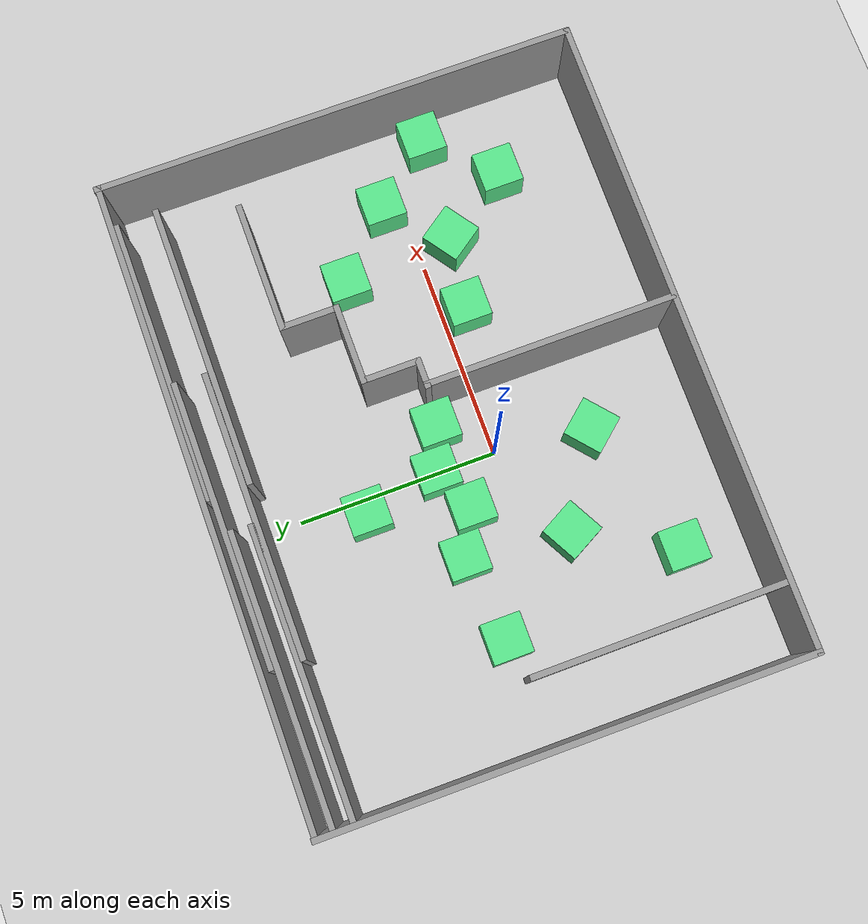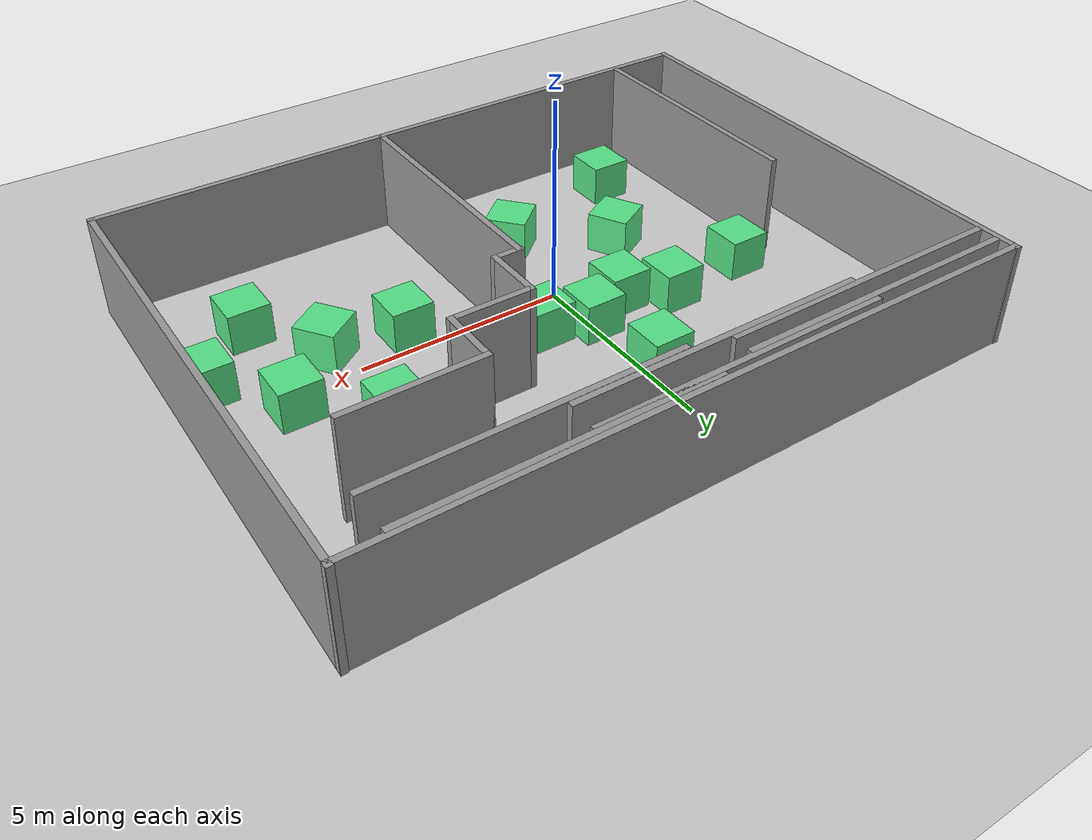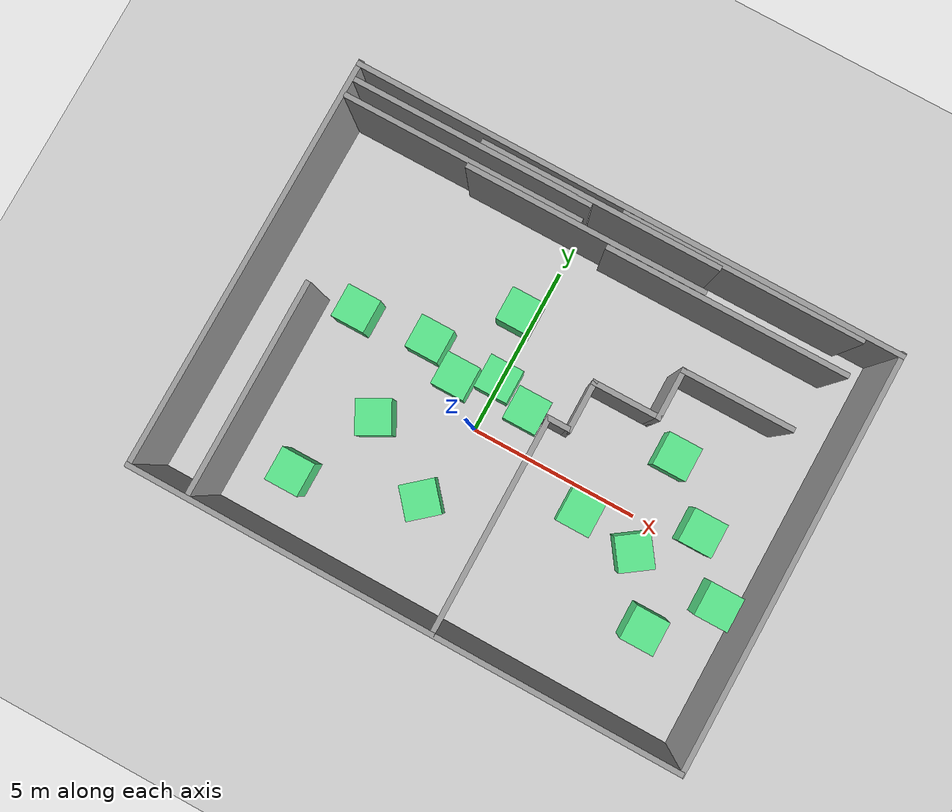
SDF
<sdf version="1.7">
 <world name="default">
  <plugin name="gazebo_ros_state" filename="libgazebo_ros_state.so"><update_rate>0.004</update_rate></plugin>
  <light name="sun" type="directional">
   <pose>0 0 10 0 -0 0</pose>
   <diffuse>0.8 0.8 0.8 1</diffuse>
   <specular>0.2 0.2 0.2 1</specular>
   <attenuation>
    <range>1000</range>
    <constant>0.9</constant>
    <linear>0.01</linear>
    <quadratic>0.001</quadratic>
   </attenuation>
   <direction>-0.5 0.1 -0.9</direction>
   <spot><inner_angle>0</inner_angle><outer_angle>0</outer_angle><falloff>0</falloff></spot>
  </light>
  <model name="ground_plane">
   <static>1</static>
   <link name="link">
    <collision name="collision">
     <geometry><plane><normal>0 0 1</normal><size>100 100</size></plane></geometry>
     <surface><friction><ode><mu>100</mu><mu2>50</mu2></ode></friction></surface>
    </collision>
    <visual name="visual">
     <cast_shadows>0</cast_shadows>
     <geometry><plane><normal>0 0 1</normal><size>100 100</size></plane></geometry>
     <material>
      <script><uri>file://media/materials/scripts/gazebo.material</uri><name>Gazebo/Grey</name></script>
     </material>
    </visual>
   </link>
  </model>
  <gravity>0 0 -9.8</gravity>
  <magnetic_field>6e-06 2.3e-05 -4.2e-05</magnetic_field>
  <atmosphere type="adiabatic"/>
  <physics type="ode">
   <real_time_update_rate>1000.0</real_time_update_rate>
   <max_step_size>0.001</max_step_size>
   <real_time_factor>1</real_time_factor>
   <ode>
    <solver>
     <type>quick</type>
     <iters>150</iters>
     <precon_iters>0</precon_iters>
     <sor>1.400000</sor>
     <use_dynamic_moi_rescaling>1</use_dynamic_moi_rescaling>
    </solver>
    <constraints>
     <cfm>0.00001</cfm>
     <erp>0.2</erp>
     <contact_max_correcting_vel>2000.000000</contact_max_correcting_vel>
     <contact_surface_layer>0.01000</contact_surface_layer>
    </constraints>
   </ode>
  </physics>
  <scene><ambient>0.4 0.4 0.4 1</ambient><background>0.7 0.7 0.7 1</background><shadows>1</shadows></scene>
  <audio><device>default</device></audio>
  <spherical_coordinates>
   <surface_model>EARTH_WGS84</surface_model>
   <latitude_deg>0</latitude_deg>
   <longitude_deg>0</longitude_deg>
   <elevation>0</elevation>
   <heading_deg>0</heading_deg>
  </spherical_coordinates>
  <model name="compact_scenario">
   <pose>0.8495 0.906405 0 0 -0 0</pose>
   <link name="Wall_0">
    <collision name="Wall_0_Collision">
     <geometry><box><size>12.0524 0.15 2.5</size></box></geometry>
     <pose>0 0 1.25 0 -0 0</pose>
    </collision>
    <visual name="Wall_0_Visual">
     <pose>0 0 1.25 0 -0 0</pose>
     <geometry><box><size>12.0524 0.15 2.5</size></box></geometry>
     <material>
      <script><uri>file://media/materials/scripts/gazebo.material</uri><name>Gazebo/Grey</name></script>
      <ambient>1 1 1 1</ambient>
     </material>
     <meta><layer>0</layer></meta>
    </visual>
    <pose>-7.925 0.034695 0 0 -0 1.5655</pose>
   </link>
   <link name="Wall_10">
    <collision name="Wall_10_Collision">
     <geometry><box><size>2 0.15 2.5</size></box></geometry>
     <pose>0 0 1.25 0 -0 0</pose>
    </collision>
    <visual name="Wall_10_Visual">
     <pose>0 0 1.25 0 -0 0</pose>
     <geometry><box><size>2 0.15 2.5</size></box></geometry>
     <material>
      <script><uri>file://media/materials/scripts/gazebo.material</uri><name>Gazebo/Grey</name></script>
      <ambient>1 1 1 1</ambient>
     </material>
     <meta><layer>0</layer></meta>
    </visual>
    <pose>2.32707 1.54953 0 0 -0 0</pose>
   </link>
   <link name="Wall_11">
    <collision name="Wall_11_Collision">
     <geometry><box><size>1.5 0.15 2.5</size></box></geometry>
     <pose>0 0 1.25 0 -0 0</pose>
    </collision>
    <visual name="Wall_11_Visual">
     <pose>0 0 1.25 0 -0 0</pose>
     <geometry><box><size>1.5 0.15 2.5</size></box></geometry>
     <material>
      <script><uri>file://media/materials/scripts/gazebo.material</uri><name>Gazebo/Grey</name></script>
      <ambient>1 1 1 1</ambient>
     </material>
     <meta><layer>0</layer></meta>
    </visual>
    <pose>3.25206 2.22453 0 0 -0 1.5708</pose>
   </link>
   <link name="Wall_12">
    <collision name="Wall_12_Collision">
     <geometry><box><size>3.25 0.15 2.5</size></box></geometry>
     <pose>0 0 1.25 0 -0 0</pose>
    </collision>
    <visual name="Wall_12_Visual">
     <pose>0 0 1.25 0 -0 0</pose>
     <geometry><box><size>3.25 0.15 2.5</size></box></geometry>
     <material>
      <script><uri>file://media/materials/scripts/gazebo.material</uri><name>Gazebo/Grey</name></script>
      <ambient>1 1 1 1</ambient>
     </material>
     <meta><layer>0</layer></meta>
    </visual>
    <pose>4.80206 2.89953 0 0 -0 0</pose>
   </link>
   <link name="Wall_16">
    <collision name="Wall_16_Collision">
     <geometry><box><size>6.25 0.15 2.5</size></box></geometry>
     <pose>0 0 1.25 0 -0 0</pose>
    </collision>
    <visual name="Wall_16_Visual">
     <pose>0 0 1.25 0 -0 0</pose>
     <geometry><box><size>6.25 0.15 2.5</size></box></geometry>
     <material>
      <script><uri>file://media/materials/scripts/gazebo.material</uri><name>Gazebo/Grey</name></script>
      <ambient>1 1 1 1</ambient>
     </material>
     <meta><layer>0</layer></meta>
    </visual>
    <pose>-6.26278 -2.77067 0 0 -0 1.5708</pose>
   </link>
   <link name="Wall_2">
    <collision name="Wall_2_Collision">
     <geometry><box><size>15.9738 0.15 2.5</size></box></geometry>
     <pose>0 0 1.25 0 -0 0</pose>
    </collision>
    <visual name="Wall_2_Visual">
     <pose>0 0 1.25 0 -0 0</pose>
     <geometry><box><size>15.9738 0.15 2.5</size></box></geometry>
     <material>
      <script><uri>file://media/materials/scripts/gazebo.material</uri><name>Gazebo/Grey</name></script>
      <ambient>1 1 1 1</ambient>
     </material>
     <meta><layer>0</layer></meta>
    </visual>
    <pose>-0.044699 -5.9511 0 0 -0 -0.004385</pose>
   </link>
   <link name="Wall_4">
    <collision name="Wall_4_Collision">
     <geometry><box><size>12.0528 0.15 2.5</size></box></geometry>
     <pose>0 0 1.25 0 -0 0</pose>
    </collision>
    <visual name="Wall_4_Visual">
     <pose>0 0 1.25 0 -0 0</pose>
     <geometry><box><size>12.0528 0.15 2.5</size></box></geometry>
     <material>
      <script><uri>file://media/materials/scripts/gazebo.material</uri><name>Gazebo/Grey</name></script>
      <ambient>1 1 1 1</ambient>
     </material>
     <meta><layer>0</layer></meta>
    </visual>
    <pose>7.9251 -0.034501 0 0 -0 1.56552</pose>
   </link>
   <link name="Wall_5">
    <collision name="Wall_5_Collision">
     <geometry><box><size>16 0.15 2.5</size></box></geometry>
     <pose>0 0 1.25 0 -0 0</pose>
    </collision>
    <visual name="Wall_5_Visual">
     <pose>0 0 1.25 0 -0 0</pose>
     <geometry><box><size>16 0.15 2.5</size></box></geometry>
     <material>
      <script><uri>file://media/materials/scripts/gazebo.material</uri><name>Gazebo/Grey</name></script>
      <ambient>1 1 1 1</ambient>
     </material>
     <meta><layer>0</layer></meta>
    </visual>
    <pose>0.031501 5.92469 0 0 -0 3.13724</pose>
   </link>
   <link name="Wall_7">
    <collision name="Wall_7_Collision">
     <geometry><box><size>6.25 0.15 2.5</size></box></geometry>
     <pose>0 0 1.25 0 -0 0</pose>
    </collision>
    <visual name="Wall_7_Visual">
     <pose>0 0 1.25 0 -0 0</pose>
     <geometry><box><size>6.25 0.15 2.5</size></box></geometry>
     <material>
      <script><uri>file://media/materials/scripts/gazebo.material</uri><name>Gazebo/Grey</name></script>
      <ambient>1 1 1 1</ambient>
     </material>
     <meta><layer>0</layer></meta>
    </visual>
    <pose>0.812873 -2.85047 0 0 -0 1.5708</pose>
   </link>
   <link name="Wall_8">
    <collision name="Wall_8_Collision">
     <geometry><box><size>0.765793 0.15 2.5</size></box></geometry>
     <pose>0 0 1.25 0 -0 0</pose>
    </collision>
    <visual name="Wall_8_Visual">
     <pose>0 0 1.25 0 -0 0</pose>
     <geometry><box><size>0.765793 0.15 2.5</size></box></geometry>
     <material>
      <script><uri>file://media/materials/scripts/gazebo.material</uri><name>Gazebo/Grey</name></script>
      <ambient>1 1 1 1</ambient>
     </material>
     <meta><layer>0</layer></meta>
    </visual>
    <pose>1.09417 0.199533 0 0 -0 0</pose>
   </link>
   <link name="Wall_9">
    <collision name="Wall_9_Collision">
     <geometry><box><size>1.5 0.15 2.5</size></box></geometry>
     <pose>0 0 1.25 0 -0 0</pose>
    </collision>
    <visual name="Wall_9_Visual">
     <pose>0 0 1.25 0 -0 0</pose>
     <geometry><box><size>1.5 0.15 2.5</size></box></geometry>
     <material>
      <script><uri>file://media/materials/scripts/gazebo.material</uri><name>Gazebo/Grey</name></script>
      <ambient>1 1 1 1</ambient>
     </material>
     <meta><layer>0</layer></meta>
    </visual>
    <pose>1.40206 0.874533 0 0 -0 1.5708</pose>
   </link>
   <static>1</static>
  </model>
  <model name="wall">
   <pose>4.30646 7.55462 0 0 -0 0</pose>
   <link name="Wall_0">
    <collision name="Wall_0_Collision">
     <geometry><box><size>7 0.15 2.5</size></box></geometry>
     <pose>0 0 1.25 0 -0 0</pose>
    </collision>
    <visual name="Wall_0_Visual">
     <pose>0 0 1.25 0 -0 0</pose>
     <geometry><box><size>7 0.15 2.5</size></box></geometry>
     <material>
      <script><uri>file://media/materials/scripts/gazebo.material</uri><name>Gazebo/Grey</name></script>
      <ambient>1 1 1 1</ambient>
     </material>
     <meta><layer>0</layer></meta>
    </visual>
    <pose>-0 -0.8775 0 0 -0 0</pose>
   </link>
   <static>1</static>
  </model>
  <model name="wall_0">
   <pose>0.217261 7.46021 0 0 -0 0</pose>
   <link name="Wall_0">
    <collision name="Wall_0_Collision">
     <geometry><box><size>7 0.15 2.5</size></box></geometry>
     <pose>0 0 1.25 0 -0 0</pose>
    </collision>
    <visual name="Wall_0_Visual">
     <pose>0 0 1.25 0 -0 0</pose>
     <geometry><box><size>7 0.15 2.5</size></box></geometry>
     <material>
      <script><uri>file://media/materials/scripts/gazebo.material</uri><name>Gazebo/Grey</name></script>
      <ambient>1 1 1 1</ambient>
     </material>
     <meta><layer>0</layer></meta>
    </visual>
    <pose>-0 -0.8775 0 0 -0 0</pose>
   </link>
   <static>1</static>
  </model>
  <model name="wall_1">
   <pose>-3.47043 7.32638 0 0 -0 0</pose>
   <link name="Wall_0">
    <collision name="Wall_0_Collision">
     <geometry><box><size>7 0.15 2.5</size></box></geometry>
     <pose>0 0 1.25 0 -0 0</pose>
    </collision>
    <visual name="Wall_0_Visual">
     <pose>0 0 1.25 0 -0 0</pose>
     <geometry><box><size>7 0.15 2.5</size></box></geometry>
     <material>
      <script><uri>file://media/materials/scripts/gazebo.material</uri><name>Gazebo/Grey</name></script>
      <ambient>1 1 1 1</ambient>
     </material>
     <meta><layer>0</layer></meta>
    </visual>
    <pose>-0 -0.8775 0 0 -0 0</pose>
   </link>
   <static>1</static>
  </model>
  <model name="wall_2">
   <pose>-3.49966 6.84759 0 0 -0 0</pose>
   <link name="Wall_0">
    <collision name="Wall_0_Collision">
     <geometry><box><size>7 0.15 2.5</size></box></geometry>
     <pose>0 0 1.25 0 -0 0</pose>
    </collision>
    <visual name="Wall_0_Visual">
     <pose>0 0 1.25 0 -0 0</pose>
     <geometry><box><size>7 0.15 2.5</size></box></geometry>
     <material>
      <script><uri>file://media/materials/scripts/gazebo.material</uri><name>Gazebo/Grey</name></script>
      <ambient>1 1 1 1</ambient>
     </material>
     <meta><layer>0</layer></meta>
    </visual>
    <pose>-0 -0.8775 0 0 -0 0</pose>
   </link>
   <static>1</static>
  </model>
  <model name="wall_3">
   <pose>0.180386 6.72058 0 0 -0 0</pose>
   <link name="Wall_0">
    <collision name="Wall_0_Collision">
     <geometry><box><size>7 0.15 2.5</size></box></geometry>
     <pose>0 0 1.25 0 -0 0</pose>
    </collision>
    <visual name="Wall_0_Visual">
     <pose>0 0 1.25 0 -0 0</pose>
     <geometry><box><size>7 0.15 2.5</size></box></geometry>
     <material>
      <script><uri>file://media/materials/scripts/gazebo.material</uri><name>Gazebo/Grey</name></script>
      <ambient>1 1 1 1</ambient>
     </material>
     <meta><layer>0</layer></meta>
    </visual>
    <pose>-0 -0.8775 0 0 -0 0</pose>
   </link>
   <static>1</static>
  </model>
  <model name="wall_4">
   <pose>4.35317 6.56635 0 0 -0 0</pose>
   <link name="Wall_0">
    <collision name="Wall_0_Collision">
     <geometry><box><size>7 0.15 2.5</size></box></geometry>
     <pose>0 0 1.25 0 -0 0</pose>
    </collision>
    <visual name="Wall_0_Visual">
     <pose>0 0 1.25 0 -0 0</pose>
     <geometry><box><size>7 0.15 2.5</size></box></geometry>
     <material>
      <script><uri>file://media/materials/scripts/gazebo.material</uri><name>Gazebo/Grey</name></script>
      <ambient>1 1 1 1</ambient>
     </material>
     <meta><layer>0</layer></meta>
    </visual>
    <pose>-0 -0.8775 0 0 -0 0</pose>
   </link>
   <static>1</static>
  </model>
  <model name="block">
   <link name="link_0">
    <inertial>
     <mass>1</mass>
     <inertia>
      <ixx>0.166667</ixx>
      <ixy>0</ixy>
      <ixz>0</ixz>
      <iyy>0.166667</iyy>
      <iyz>0</iyz>
      <izz>0.166667</izz>
     </inertia>
    </inertial>
    <pose>0 -1e-06 0 0 -0 0</pose>
    <visual name="visual">
     <geometry><box><size>1 1 1</size></box></geometry>
     <material>
      <lighting>1</lighting>
      <script><uri>file://media/materials/scripts/gazebo.material</uri><name>Gazebo/Grey</name></script>
      <shader type="pixel"><normal_map>__default__</normal_map></shader>
      <ambient>0.3 0.3 0.3 1</ambient>
      <diffuse>0.341 0.89 0.537 1</diffuse>
      <specular>0.341 0.89 0.537 1</specular>
      <emissive>0.149 0.635 0.412 1</emissive>
     </material>
    </visual>
    <collision name="collision">
     <geometry><box><size>1 1 1</size></box></geometry>
     <surface>
      <friction>
       <ode><mu>1</mu><mu2>1</mu2><fdir1>0 0 0</fdir1><slip1>0</slip1><slip2>0</slip2></ode>
       <torsional>
        <coefficient>1</coefficient>
        <patch_radius>0</patch_radius>
        <surface_radius>0</surface_radius>
        <use_patch_radius>1</use_patch_radius>
        <ode><slip>0</slip></ode>
       </torsional>
      </friction>
      <bounce><restitution_coefficient>0</restitution_coefficient><threshold>1e+06</threshold></bounce>
      <contact>
       <collide_without_contact>0</collide_without_contact>
       <collide_without_contact_bitmask>1</collide_without_contact_bitmask>
       <collide_bitmask>1</collide_bitmask>
       <ode>
        <soft_cfm>0</soft_cfm>
        <soft_erp>0.2</soft_erp>
        <kp>1e+13</kp>
        <kd>1</kd>
        <max_vel>0.01</max_vel>
        <min_depth>0</min_depth>
       </ode>
       <bullet>
        <split_impulse>1</split_impulse>
        <split_impulse_penetration_threshold>-0.01</split_impulse_penetration_threshold>
        <soft_cfm>0</soft_cfm>
        <soft_erp>0.2</soft_erp>
        <kp>1e+13</kp>
        <kd>1</kd>
       </bullet>
      </contact>
     </surface>
    </collision>
   </link>
   <static>0</static>
   <pose>1.05066 1.12702 0.499995 0 1e-05 0</pose>
  </model>
  <model name="block_0">
   <link name="link_0">
    <inertial>
     <mass>1</mass>
     <inertia>
      <ixx>0.166667</ixx>
      <ixy>0</ixy>
      <ixz>0</ixz>
      <iyy>0.166667</iyy>
      <iyz>0</iyz>
      <izz>0.166667</izz>
     </inertia>
    </inertial>
    <pose>0 -1e-06 0 0 -0 0</pose>
    <visual name="visual">
     <geometry><box><size>1 1 1</size></box></geometry>
     <material>
      <lighting>1</lighting>
      <script><uri>file://media/materials/scripts/gazebo.material</uri><name>Gazebo/Grey</name></script>
      <shader type="pixel"><normal_map>__default__</normal_map></shader>
      <ambient>0.3 0.3 0.3 1</ambient>
      <diffuse>0.341 0.89 0.537 1</diffuse>
      <specular>0.341 0.89 0.537 1</specular>
      <emissive>0.149 0.635 0.412 1</emissive>
     </material>
    </visual>
    <collision name="collision">
     <geometry><box><size>1 1 1</size></box></geometry>
     <surface>
      <friction>
       <ode><mu>1</mu><mu2>1</mu2><fdir1>0 0 0</fdir1><slip1>0</slip1><slip2>0</slip2></ode>
       <torsional>
        <coefficient>1</coefficient>
        <patch_radius>0</patch_radius>
        <surface_radius>0</surface_radius>
        <use_patch_radius>1</use_patch_radius>
        <ode><slip>0</slip></ode>
       </torsional>
      </friction>
      <bounce><restitution_coefficient>0</restitution_coefficient><threshold>1e+06</threshold></bounce>
      <contact>
       <collide_without_contact>0</collide_without_contact>
       <collide_without_contact_bitmask>1</collide_without_contact_bitmask>
       <collide_bitmask>1</collide_bitmask>
       <ode>
        <soft_cfm>0</soft_cfm>
        <soft_erp>0.2</soft_erp>
        <kp>1e+13</kp>
        <kd>1</kd>
        <max_vel>0.01</max_vel>
        <min_depth>0</min_depth>
       </ode>
       <bullet>
        <split_impulse>1</split_impulse>
        <split_impulse_penetration_threshold>-0.01</split_impulse_penetration_threshold>
        <soft_cfm>0</soft_cfm>
        <soft_erp>0.2</soft_erp>
        <kp>1e+13</kp>
        <kd>1</kd>
       </bullet>
      </contact>
     </surface>
    </collision>
   </link>
   <static>0</static>
   <pose>-0.033327 1.50865 0.499995 0 1e-05 0</pose>
  </model>
  <model name="block_1">
   <link name="link_0">
    <inertial>
     <mass>1</mass>
     <inertia>
      <ixx>0.166667</ixx>
      <ixy>0</ixy>
      <ixz>0</ixz>
      <iyy>0.166667</iyy>
      <iyz>0</iyz>
      <izz>0.166667</izz>
     </inertia>
    </inertial>
    <pose>0 -1e-06 0 0 -0 0</pose>
    <visual name="visual">
     <geometry><box><size>1 1 1</size></box></geometry>
     <material>
      <lighting>1</lighting>
      <script><uri>file://media/materials/scripts/gazebo.material</uri><name>Gazebo/Grey</name></script>
      <shader type="pixel"><normal_map>__default__</normal_map></shader>
      <ambient>0.3 0.3 0.3 1</ambient>
      <diffuse>0.341 0.89 0.537 1</diffuse>
      <specular>0.341 0.89 0.537 1</specular>
      <emissive>0.149 0.635 0.412 1</emissive>
     </material>
    </visual>
    <collision name="collision">
     <geometry><box><size>1 1 1</size></box></geometry>
     <surface>
      <friction>
       <ode><mu>1</mu><mu2>1</mu2><fdir1>0 0 0</fdir1><slip1>0</slip1><slip2>0</slip2></ode>
       <torsional>
        <coefficient>1</coefficient>
        <patch_radius>0</patch_radius>
        <surface_radius>0</surface_radius>
        <use_patch_radius>1</use_patch_radius>
        <ode><slip>0</slip></ode>
       </torsional>
      </friction>
      <bounce><restitution_coefficient>0</restitution_coefficient><threshold>1e+06</threshold></bounce>
      <contact>
       <collide_without_contact>0</collide_without_contact>
       <collide_without_contact_bitmask>1</collide_without_contact_bitmask>
       <collide_bitmask>1</collide_bitmask>
       <ode>
        <soft_cfm>0</soft_cfm>
        <soft_erp>0.2</soft_erp>
        <kp>1e+13</kp>
        <kd>1</kd>
        <max_vel>0.01</max_vel>
        <min_depth>0</min_depth>
       </ode>
       <bullet>
        <split_impulse>1</split_impulse>
        <split_impulse_penetration_threshold>-0.01</split_impulse_penetration_threshold>
        <soft_cfm>0</soft_cfm>
        <soft_erp>0.2</soft_erp>
        <kp>1e+13</kp>
        <kd>1</kd>
       </bullet>
      </contact>
     </surface>
    </collision>
   </link>
   <static>0</static>
   <pose>-1.10206 1.02009 0.499995 0 1e-05 0</pose>
  </model>
  <model name="block_2">
   <link name="link_0">
    <inertial>
     <mass>1</mass>
     <inertia>
      <ixx>0.166667</ixx>
      <ixy>0</ixy>
      <ixz>0</ixz>
      <iyy>0.166667</iyy>
      <iyz>0</iyz>
      <izz>0.166667</izz>
     </inertia>
    </inertial>
    <pose>0 -1e-06 0 0 -0 0</pose>
    <visual name="visual">
     <geometry><box><size>1 1 1</size></box></geometry>
     <material>
      <lighting>1</lighting>
      <script><uri>file://media/materials/scripts/gazebo.material</uri><name>Gazebo/Grey</name></script>
      <shader type="pixel"><normal_map>__default__</normal_map></shader>
      <ambient>0.3 0.3 0.3 1</ambient>
      <diffuse>0.341 0.89 0.537 1</diffuse>
      <specular>0.341 0.89 0.537 1</specular>
      <emissive>0.149 0.635 0.412 1</emissive>
     </material>
    </visual>
    <collision name="collision">
     <geometry><box><size>1 1 1</size></box></geometry>
     <surface>
      <friction>
       <ode><mu>1</mu><mu2>1</mu2><fdir1>0 0 0</fdir1><slip1>0</slip1><slip2>0</slip2></ode>
       <torsional>
        <coefficient>1</coefficient>
        <patch_radius>0</patch_radius>
        <surface_radius>0</surface_radius>
        <use_patch_radius>1</use_patch_radius>
        <ode><slip>0</slip></ode>
       </torsional>
      </friction>
      <bounce><restitution_coefficient>0</restitution_coefficient><threshold>1e+06</threshold></bounce>
      <contact>
       <collide_without_contact>0</collide_without_contact>
       <collide_without_contact_bitmask>1</collide_without_contact_bitmask>
       <collide_bitmask>1</collide_bitmask>
       <ode>
        <soft_cfm>0</soft_cfm>
        <soft_erp>0.2</soft_erp>
        <kp>1e+13</kp>
        <kd>1</kd>
        <max_vel>0.01</max_vel>
        <min_depth>0</min_depth>
       </ode>
       <bullet>
        <split_impulse>1</split_impulse>
        <split_impulse_penetration_threshold>-0.01</split_impulse_penetration_threshold>
        <soft_cfm>0</soft_cfm>
        <soft_erp>0.2</soft_erp>
        <kp>1e+13</kp>
        <kd>1</kd>
       </bullet>
      </contact>
     </surface>
    </collision>
   </link>
   <static>0</static>
   <pose>-2.20131 1.56972 0.499995 0 1e-05 0</pose>
  </model>
  <model name="block_3">
   <link name="link_0">
    <inertial>
     <mass>1</mass>
     <inertia>
      <ixx>0.166667</ixx>
      <ixy>0</ixy>
      <ixz>0</ixz>
      <iyy>0.166667</iyy>
      <iyz>0</iyz>
      <izz>0.166667</izz>
     </inertia>
    </inertial>
    <pose>0 -1e-06 0 0 -0 0</pose>
    <visual name="visual">
     <geometry><box><size>1 1 1</size></box></geometry>
     <material>
      <lighting>1</lighting>
      <script><uri>file://media/materials/scripts/gazebo.material</uri><name>Gazebo/Grey</name></script>
      <shader type="pixel"><normal_map>__default__</normal_map></shader>
      <ambient>0.3 0.3 0.3 1</ambient>
      <diffuse>0.341 0.89 0.537 1</diffuse>
      <specular>0.341 0.89 0.537 1</specular>
      <emissive>0.149 0.635 0.412 1</emissive>
     </material>
    </visual>
    <collision name="collision">
     <geometry><box><size>1 1 1</size></box></geometry>
     <surface>
      <friction>
       <ode><mu>1</mu><mu2>1</mu2><fdir1>0 0 0</fdir1><slip1>0</slip1><slip2>0</slip2></ode>
       <torsional>
        <coefficient>1</coefficient>
        <patch_radius>0</patch_radius>
        <surface_radius>0</surface_radius>
        <use_patch_radius>1</use_patch_radius>
        <ode><slip>0</slip></ode>
       </torsional>
      </friction>
      <bounce><restitution_coefficient>0</restitution_coefficient><threshold>1e+06</threshold></bounce>
      <contact>
       <collide_without_contact>0</collide_without_contact>
       <collide_without_contact_bitmask>1</collide_without_contact_bitmask>
       <collide_bitmask>1</collide_bitmask>
       <ode>
        <soft_cfm>0</soft_cfm>
        <soft_erp>0.2</soft_erp>
        <kp>1e+13</kp>
        <kd>1</kd>
        <max_vel>0.01</max_vel>
        <min_depth>0</min_depth>
       </ode>
       <bullet>
        <split_impulse>1</split_impulse>
        <split_impulse_penetration_threshold>-0.01</split_impulse_penetration_threshold>
        <soft_cfm>0</soft_cfm>
        <soft_erp>0.2</soft_erp>
        <kp>1e+13</kp>
        <kd>1</kd>
       </bullet>
      </contact>
     </surface>
    </collision>
   </link>
   <static>0</static>
   <pose>-0.323417 -2.354 0.5 0 -0 0.707551</pose>
  </model>
  <model name="block_4">
   <link name="link_0">
    <inertial>
     <mass>1</mass>
     <inertia>
      <ixx>0.166667</ixx>
      <ixy>0</ixy>
      <ixz>0</ixz>
      <iyy>0.166667</iyy>
      <iyz>0</iyz>
      <izz>0.166667</izz>
     </inertia>
    </inertial>
    <pose>0 -1e-06 0 0 -0 0</pose>
    <visual name="visual">
     <geometry><box><size>1 1 1</size></box></geometry>
     <material>
      <lighting>1</lighting>
      <script><uri>file://media/materials/scripts/gazebo.material</uri><name>Gazebo/Grey</name></script>
      <shader type="pixel"><normal_map>__default__</normal_map></shader>
      <ambient>0.3 0.3 0.3 1</ambient>
      <diffuse>0.341 0.89 0.537 1</diffuse>
      <specular>0.341 0.89 0.537 1</specular>
      <emissive>0.149 0.635 0.412 1</emissive>
     </material>
    </visual>
    <collision name="collision">
     <geometry><box><size>1 1 1</size></box></geometry>
     <surface>
      <friction>
       <ode><mu>1</mu><mu2>1</mu2><fdir1>0 0 0</fdir1><slip1>0</slip1><slip2>0</slip2></ode>
       <torsional>
        <coefficient>1</coefficient>
        <patch_radius>0</patch_radius>
        <surface_radius>0</surface_radius>
        <use_patch_radius>1</use_patch_radius>
        <ode><slip>0</slip></ode>
       </torsional>
      </friction>
      <bounce><restitution_coefficient>0</restitution_coefficient><threshold>1e+06</threshold></bounce>
      <contact>
       <collide_without_contact>0</collide_without_contact>
       <collide_without_contact_bitmask>1</collide_without_contact_bitmask>
       <collide_bitmask>1</collide_bitmask>
       <ode>
        <soft_cfm>0</soft_cfm>
        <soft_erp>0.2</soft_erp>
        <kp>1e+13</kp>
        <kd>1</kd>
        <max_vel>0.01</max_vel>
        <min_depth>0</min_depth>
       </ode>
       <bullet>
        <split_impulse>1</split_impulse>
        <split_impulse_penetration_threshold>-0.01</split_impulse_penetration_threshold>
        <soft_cfm>0</soft_cfm>
        <soft_erp>0.2</soft_erp>
        <kp>1e+13</kp>
        <kd>1</kd>
       </bullet>
      </contact>
     </surface>
    </collision>
   </link>
   <static>0</static>
   <pose>-2.50667 -1.0105 0.499997 -5e-06 -0 0.49563</pose>
  </model>
  <model name="block_5">
   <link name="link_0">
    <inertial>
     <mass>1</mass>
     <inertia>
      <ixx>0.166667</ixx>
      <ixy>0</ixy>
      <ixz>0</ixz>
      <iyy>0.166667</iyy>
      <iyz>0</iyz>
      <izz>0.166667</izz>
     </inertia>
    </inertial>
    <pose>0 -1e-06 0 0 -0 0</pose>
    <visual name="visual">
     <geometry><box><size>1 1 1</size></box></geometry>
     <material>
      <lighting>1</lighting>
      <script><uri>file://media/materials/scripts/gazebo.material</uri><name>Gazebo/Grey</name></script>
      <shader type="pixel"><normal_map>__default__</normal_map></shader>
      <ambient>0.3 0.3 0.3 1</ambient>
      <diffuse>0.341 0.89 0.537 1</diffuse>
      <specular>0.341 0.89 0.537 1</specular>
      <emissive>0.149 0.635 0.412 1</emissive>
     </material>
    </visual>
    <collision name="collision">
     <geometry><box><size>1 1 1</size></box></geometry>
     <surface>
      <friction>
       <ode><mu>1</mu><mu2>1</mu2><fdir1>0 0 0</fdir1><slip1>0</slip1><slip2>0</slip2></ode>
       <torsional>
        <coefficient>1</coefficient>
        <patch_radius>0</patch_radius>
        <surface_radius>0</surface_radius>
        <use_patch_radius>1</use_patch_radius>
        <ode><slip>0</slip></ode>
       </torsional>
      </friction>
      <bounce><restitution_coefficient>0</restitution_coefficient><threshold>1e+06</threshold></bounce>
      <contact>
       <collide_without_contact>0</collide_without_contact>
       <collide_without_contact_bitmask>1</collide_without_contact_bitmask>
       <collide_bitmask>1</collide_bitmask>
       <ode>
        <soft_cfm>0</soft_cfm>
        <soft_erp>0.2</soft_erp>
        <kp>1e+13</kp>
        <kd>1</kd>
        <max_vel>0.01</max_vel>
        <min_depth>0</min_depth>
       </ode>
       <bullet>
        <split_impulse>1</split_impulse>
        <split_impulse_penetration_threshold>-0.01</split_impulse_penetration_threshold>
        <soft_cfm>0</soft_cfm>
        <soft_erp>0.2</soft_erp>
        <kp>1e+13</kp>
        <kd>1</kd>
       </bullet>
      </contact>
     </surface>
    </collision>
   </link>
   <static>0</static>
   <pose>-4.35403 1.34069 0.499995 0 1e-05 0</pose>
  </model>
  <model name="block_6">
   <link name="link_0">
    <inertial>
     <mass>1</mass>
     <inertia>
      <ixx>0.166667</ixx>
      <ixy>0</ixy>
      <ixz>0</ixz>
      <iyy>0.166667</iyy>
      <iyz>0</iyz>
      <izz>0.166667</izz>
     </inertia>
    </inertial>
    <pose>0 -1e-06 0 0 -0 0</pose>
    <visual name="visual">
     <geometry><box><size>1 1 1</size></box></geometry>
     <material>
      <lighting>1</lighting>
      <script><uri>file://media/materials/scripts/gazebo.material</uri><name>Gazebo/Grey</name></script>
      <shader type="pixel"><normal_map>__default__</normal_map></shader>
      <ambient>0.3 0.3 0.3 1</ambient>
      <diffuse>0.341 0.89 0.537 1</diffuse>
      <specular>0.341 0.89 0.537 1</specular>
      <emissive>0.149 0.635 0.412 1</emissive>
     </material>
    </visual>
    <collision name="collision">
     <geometry><box><size>1 1 1</size></box></geometry>
     <surface>
      <friction>
       <ode><mu>1</mu><mu2>1</mu2><fdir1>0 0 0</fdir1><slip1>0</slip1><slip2>0</slip2></ode>
       <torsional>
        <coefficient>1</coefficient>
        <patch_radius>0</patch_radius>
        <surface_radius>0</surface_radius>
        <use_patch_radius>1</use_patch_radius>
        <ode><slip>0</slip></ode>
       </torsional>
      </friction>
      <bounce><restitution_coefficient>0</restitution_coefficient><threshold>1e+06</threshold></bounce>
      <contact>
       <collide_without_contact>0</collide_without_contact>
       <collide_without_contact_bitmask>1</collide_without_contact_bitmask>
       <collide_bitmask>1</collide_bitmask>
       <ode>
        <soft_cfm>0</soft_cfm>
        <soft_erp>0.2</soft_erp>
        <kp>1e+13</kp>
        <kd>1</kd>
        <max_vel>0.01</max_vel>
        <min_depth>0</min_depth>
       </ode>
       <bullet>
        <split_impulse>1</split_impulse>
        <split_impulse_penetration_threshold>-0.01</split_impulse_penetration_threshold>
        <soft_cfm>0</soft_cfm>
        <soft_erp>0.2</soft_erp>
        <kp>1e+13</kp>
        <kd>1</kd>
       </bullet>
      </contact>
     </surface>
    </collision>
   </link>
   <static>0</static>
   <pose>-3.7586 -3.36164 0.499995 0 1e-05 0</pose>
  </model>
  <model name="block_7">
   <link name="link_0">
    <inertial>
     <mass>1</mass>
     <inertia>
      <ixx>0.166667</ixx>
      <ixy>0</ixy>
      <ixz>0</ixz>
      <iyy>0.166667</iyy>
      <iyz>0</iyz>
      <izz>0.166667</izz>
     </inertia>
    </inertial>
    <pose>0 -1e-06 0 0 -0 0</pose>
    <visual name="visual">
     <geometry><box><size>1 1 1</size></box></geometry>
     <material>
      <lighting>1</lighting>
      <script><uri>file://media/materials/scripts/gazebo.material</uri><name>Gazebo/Grey</name></script>
      <shader type="pixel"><normal_map>__default__</normal_map></shader>
      <ambient>0.3 0.3 0.3 1</ambient>
      <diffuse>0.341 0.89 0.537 1</diffuse>
      <specular>0.341 0.89 0.537 1</specular>
      <emissive>0.149 0.635 0.412 1</emissive>
     </material>
    </visual>
    <collision name="collision">
     <geometry><box><size>1 1 1</size></box></geometry>
     <surface>
      <friction>
       <ode><mu>1</mu><mu2>1</mu2><fdir1>0 0 0</fdir1><slip1>0</slip1><slip2>0</slip2></ode>
       <torsional>
        <coefficient>1</coefficient>
        <patch_radius>0</patch_radius>
        <surface_radius>0</surface_radius>
        <use_patch_radius>1</use_patch_radius>
        <ode><slip>0</slip></ode>
       </torsional>
      </friction>
      <bounce><restitution_coefficient>0</restitution_coefficient><threshold>1e+06</threshold></bounce>
      <contact>
       <collide_without_contact>0</collide_without_contact>
       <collide_without_contact_bitmask>1</collide_without_contact_bitmask>
       <collide_bitmask>1</collide_bitmask>
       <ode>
        <soft_cfm>0</soft_cfm>
        <soft_erp>0.2</soft_erp>
        <kp>1e+13</kp>
        <kd>1</kd>
        <max_vel>0.01</max_vel>
        <min_depth>0</min_depth>
       </ode>
       <bullet>
        <split_impulse>1</split_impulse>
        <split_impulse_penetration_threshold>-0.01</split_impulse_penetration_threshold>
        <soft_cfm>0</soft_cfm>
        <soft_erp>0.2</soft_erp>
        <kp>1e+13</kp>
        <kd>1</kd>
       </bullet>
      </contact>
     </surface>
    </collision>
   </link>
   <static>0</static>
   <pose>-0.400225 3.40523 0.499995 0 1e-05 0</pose>
  </model>
  <model name="block_8">
   <link name="link_0">
    <inertial>
     <mass>1</mass>
     <inertia>
      <ixx>0.166667</ixx>
      <ixy>0</ixy>
      <ixz>0</ixz>
      <iyy>0.166667</iyy>
      <iyz>0</iyz>
      <izz>0.166667</izz>
     </inertia>
    </inertial>
    <pose>0 -1e-06 0 0 -0 0</pose>
    <visual name="visual">
     <geometry><box><size>1 1 1</size></box></geometry>
     <material>
      <lighting>1</lighting>
      <script><uri>file://media/materials/scripts/gazebo.material</uri><name>Gazebo/Grey</name></script>
      <shader type="pixel"><normal_map>__default__</normal_map></shader>
      <ambient>0.3 0.3 0.3 1</ambient>
      <diffuse>0.341 0.89 0.537 1</diffuse>
      <specular>0.341 0.89 0.537 1</specular>
      <emissive>0.149 0.635 0.412 1</emissive>
     </material>
    </visual>
    <collision name="collision">
     <geometry><box><size>1 1 1</size></box></geometry>
     <surface>
      <friction>
       <ode><mu>1</mu><mu2>1</mu2><fdir1>0 0 0</fdir1><slip1>0</slip1><slip2>0</slip2></ode>
       <torsional>
        <coefficient>1</coefficient>
        <patch_radius>0</patch_radius>
        <surface_radius>0</surface_radius>
        <use_patch_radius>1</use_patch_radius>
        <ode><slip>0</slip></ode>
       </torsional>
      </friction>
      <bounce><restitution_coefficient>0</restitution_coefficient><threshold>1e+06</threshold></bounce>
      <contact>
       <collide_without_contact>0</collide_without_contact>
       <collide_without_contact_bitmask>1</collide_without_contact_bitmask>
       <collide_bitmask>1</collide_bitmask>
       <ode>
        <soft_cfm>0</soft_cfm>
        <soft_erp>0.2</soft_erp>
        <kp>1e+13</kp>
        <kd>1</kd>
        <max_vel>0.01</max_vel>
        <min_depth>0</min_depth>
       </ode>
       <bullet>
        <split_impulse>1</split_impulse>
        <split_impulse_penetration_threshold>-0.01</split_impulse_penetration_threshold>
        <soft_cfm>0</soft_cfm>
        <soft_erp>0.2</soft_erp>
        <kp>1e+13</kp>
        <kd>1</kd>
       </bullet>
      </contact>
     </surface>
    </collision>
   </link>
   <static>0</static>
   <pose>6.73743 0.483433 0.499995 0 1e-05 0</pose>
  </model>
  <model name="block_9">
   <link name="link_0">
    <inertial>
     <mass>1</mass>
     <inertia>
      <ixx>0.166667</ixx>
      <ixy>0</ixy>
      <ixz>0</ixz>
      <iyy>0.166667</iyy>
      <iyz>0</iyz>
      <izz>0.166667</izz>
     </inertia>
    </inertial>
    <pose>0 -1e-06 0 0 -0 0</pose>
    <visual name="visual">
     <geometry><box><size>1 1 1</size></box></geometry>
     <material>
      <lighting>1</lighting>
      <script><uri>file://media/materials/scripts/gazebo.material</uri><name>Gazebo/Grey</name></script>
      <shader type="pixel"><normal_map>__default__</normal_map></shader>
      <ambient>0.3 0.3 0.3 1</ambient>
      <diffuse>0.341 0.89 0.537 1</diffuse>
      <specular>0.341 0.89 0.537 1</specular>
      <emissive>0.149 0.635 0.412 1</emissive>
     </material>
    </visual>
    <collision name="collision">
     <geometry><box><size>1 1 1</size></box></geometry>
     <surface>
      <friction>
       <ode><mu>1</mu><mu2>1</mu2><fdir1>0 0 0</fdir1><slip1>0</slip1><slip2>0</slip2></ode>
       <torsional>
        <coefficient>1</coefficient>
        <patch_radius>0</patch_radius>
        <surface_radius>0</surface_radius>
        <use_patch_radius>1</use_patch_radius>
        <ode><slip>0</slip></ode>
       </torsional>
      </friction>
      <bounce><restitution_coefficient>0</restitution_coefficient><threshold>1e+06</threshold></bounce>
      <contact>
       <collide_without_contact>0</collide_without_contact>
       <collide_without_contact_bitmask>1</collide_without_contact_bitmask>
       <collide_bitmask>1</collide_bitmask>
       <ode>
        <soft_cfm>0</soft_cfm>
        <soft_erp>0.2</soft_erp>
        <kp>1e+13</kp>
        <kd>1</kd>
        <max_vel>0.01</max_vel>
        <min_depth>0</min_depth>
       </ode>
       <bullet>
        <split_impulse>1</split_impulse>
        <split_impulse_penetration_threshold>-0.01</split_impulse_penetration_threshold>
        <soft_cfm>0</soft_cfm>
        <soft_erp>0.2</soft_erp>
        <kp>1e+13</kp>
        <kd>1</kd>
       </bullet>
      </contact>
     </surface>
    </collision>
   </link>
   <static>0</static>
   <pose>3.61056 -0.597414 0.499995 0 1e-05 0</pose>
  </model>
  <model name="block_10">
   <link name="link_0">
    <inertial>
     <mass>1</mass>
     <inertia>
      <ixx>0.166667</ixx>
      <ixy>0</ixy>
      <ixz>0</ixz>
      <iyy>0.166667</iyy>
      <iyz>0</iyz>
      <izz>0.166667</izz>
     </inertia>
    </inertial>
    <pose>0 -1e-06 0 0 -0 0</pose>
    <visual name="visual">
     <geometry><box><size>1 1 1</size></box></geometry>
     <material>
      <lighting>1</lighting>
      <script><uri>file://media/materials/scripts/gazebo.material</uri><name>Gazebo/Grey</name></script>
      <shader type="pixel"><normal_map>__default__</normal_map></shader>
      <ambient>0.3 0.3 0.3 1</ambient>
      <diffuse>0.341 0.89 0.537 1</diffuse>
      <specular>0.341 0.89 0.537 1</specular>
      <emissive>0.149 0.635 0.412 1</emissive>
     </material>
    </visual>
    <collision name="collision">
     <geometry><box><size>1 1 1</size></box></geometry>
     <surface>
      <friction>
       <ode><mu>1</mu><mu2>1</mu2><fdir1>0 0 0</fdir1><slip1>0</slip1><slip2>0</slip2></ode>
       <torsional>
        <coefficient>1</coefficient>
        <patch_radius>0</patch_radius>
        <surface_radius>0</surface_radius>
        <use_patch_radius>1</use_patch_radius>
        <ode><slip>0</slip></ode>
       </torsional>
      </friction>
      <bounce><restitution_coefficient>0</restitution_coefficient><threshold>1e+06</threshold></bounce>
      <contact>
       <collide_without_contact>0</collide_without_contact>
       <collide_without_contact_bitmask>1</collide_without_contact_bitmask>
       <collide_bitmask>1</collide_bitmask>
       <ode>
        <soft_cfm>0</soft_cfm>
        <soft_erp>0.2</soft_erp>
        <kp>1e+13</kp>
        <kd>1</kd>
        <max_vel>0.01</max_vel>
        <min_depth>0</min_depth>
       </ode>
       <bullet>
        <split_impulse>1</split_impulse>
        <split_impulse_penetration_threshold>-0.01</split_impulse_penetration_threshold>
        <soft_cfm>0</soft_cfm>
        <soft_erp>0.2</soft_erp>
        <kp>1e+13</kp>
        <kd>1</kd>
       </bullet>
      </contact>
     </surface>
    </collision>
   </link>
   <static>0</static>
   <pose>6.57639 -2.52849 0.499995 0 1e-05 0</pose>
  </model>
  <model name="block_11">
   <link name="link_0">
    <inertial>
     <mass>1</mass>
     <inertia>
      <ixx>0.166667</ixx>
      <ixy>0</ixy>
      <ixz>0</ixz>
      <iyy>0.166667</iyy>
      <iyz>0</iyz>
      <izz>0.166667</izz>
     </inertia>
    </inertial>
    <pose>0 -1e-06 0 0 -0 0</pose>
    <visual name="visual">
     <geometry><box><size>1 1 1</size></box></geometry>
     <material>
      <lighting>1</lighting>
      <script><uri>file://media/materials/scripts/gazebo.material</uri><name>Gazebo/Grey</name></script>
      <shader type="pixel"><normal_map>__default__</normal_map></shader>
      <ambient>0.3 0.3 0.3 1</ambient>
      <diffuse>0.341 0.89 0.537 1</diffuse>
      <specular>0.341 0.89 0.537 1</specular>
      <emissive>0.149 0.635 0.412 1</emissive>
     </material>
    </visual>
    <collision name="collision">
     <geometry><box><size>1 1 1</size></box></geometry>
     <surface>
      <friction>
       <ode><mu>1</mu><mu2>1</mu2><fdir1>0 0 0</fdir1><slip1>0</slip1><slip2>0</slip2></ode>
       <torsional>
        <coefficient>1</coefficient>
        <patch_radius>0</patch_radius>
        <surface_radius>0</surface_radius>
        <use_patch_radius>1</use_patch_radius>
        <ode><slip>0</slip></ode>
       </torsional>
      </friction>
      <bounce><restitution_coefficient>0</restitution_coefficient><threshold>1e+06</threshold></bounce>
      <contact>
       <collide_without_contact>0</collide_without_contact>
       <collide_without_contact_bitmask>1</collide_without_contact_bitmask>
       <collide_bitmask>1</collide_bitmask>
       <ode>
        <soft_cfm>0</soft_cfm>
        <soft_erp>0.2</soft_erp>
        <kp>1e+13</kp>
        <kd>1</kd>
        <max_vel>0.01</max_vel>
        <min_depth>0</min_depth>
       </ode>
       <bullet>
        <split_impulse>1</split_impulse>
        <split_impulse_penetration_threshold>-0.01</split_impulse_penetration_threshold>
        <soft_cfm>0</soft_cfm>
        <soft_erp>0.2</soft_erp>
        <kp>1e+13</kp>
        <kd>1</kd>
       </bullet>
      </contact>
     </surface>
    </collision>
   </link>
   <static>0</static>
   <pose>5.37592 -0.849252 0.5 0 -0 0.614404</pose>
  </model>
  <model name="block_12">
   <link name="link_0">
    <inertial>
     <mass>1</mass>
     <inertia>
      <ixx>0.166667</ixx>
      <ixy>0</ixy>
      <ixz>0</ixz>
      <iyy>0.166667</iyy>
      <iyz>0</iyz>
      <izz>0.166667</izz>
     </inertia>
    </inertial>
    <pose>0 -1e-06 0 0 -0 0</pose>
    <visual name="visual">
     <geometry><box><size>1 1 1</size></box></geometry>
     <material>
      <lighting>1</lighting>
      <script><uri>file://media/materials/scripts/gazebo.material</uri><name>Gazebo/Grey</name></script>
      <shader type="pixel"><normal_map>__default__</normal_map></shader>
      <ambient>0.3 0.3 0.3 1</ambient>
      <diffuse>0.341 0.89 0.537 1</diffuse>
      <specular>0.341 0.89 0.537 1</specular>
      <emissive>0.149 0.635 0.412 1</emissive>
     </material>
    </visual>
    <collision name="collision">
     <geometry><box><size>1 1 1</size></box></geometry>
     <surface>
      <friction>
       <ode><mu>1</mu><mu2>1</mu2><fdir1>0 0 0</fdir1><slip1>0</slip1><slip2>0</slip2></ode>
       <torsional>
        <coefficient>1</coefficient>
        <patch_radius>0</patch_radius>
        <surface_radius>0</surface_radius>
        <use_patch_radius>1</use_patch_radius>
        <ode><slip>0</slip></ode>
       </torsional>
      </friction>
      <bounce><restitution_coefficient>0</restitution_coefficient><threshold>1e+06</threshold></bounce>
      <contact>
       <collide_without_contact>0</collide_without_contact>
       <collide_without_contact_bitmask>1</collide_without_contact_bitmask>
       <collide_bitmask>1</collide_bitmask>
       <ode>
        <soft_cfm>0</soft_cfm>
        <soft_erp>0.2</soft_erp>
        <kp>1e+13</kp>
        <kd>1</kd>
        <max_vel>0.01</max_vel>
        <min_depth>0</min_depth>
       </ode>
       <bullet>
        <split_impulse>1</split_impulse>
        <split_impulse_penetration_threshold>-0.01</split_impulse_penetration_threshold>
        <soft_cfm>0</soft_cfm>
        <soft_erp>0.2</soft_erp>
        <kp>1e+13</kp>
        <kd>1</kd>
       </bullet>
      </contact>
     </surface>
    </collision>
   </link>
   <static>0</static>
   <pose>5.18456 1.95729 0.5 0 -0 0</pose>
  </model>
  <model name="block_13">
   <link name="link_0">
    <inertial>
     <mass>1</mass>
     <inertia>
      <ixx>0.166667</ixx>
      <ixy>0</ixy>
      <ixz>0</ixz>
      <iyy>0.166667</iyy>
      <iyz>0</iyz>
      <izz>0.166667</izz>
     </inertia>
    </inertial>
    <pose>0 -1e-06 0 0 -0 0</pose>
    <visual name="visual">
     <geometry><box><size>1 1 1</size></box></geometry>
     <material>
      <lighting>1</lighting>
      <script><uri>file://media/materials/scripts/gazebo.material</uri><name>Gazebo/Grey</name></script>
      <shader type="pixel"><normal_map>__default__</normal_map></shader>
      <ambient>0.3 0.3 0.3 1</ambient>
      <diffuse>0.341 0.89 0.537 1</diffuse>
      <specular>0.341 0.89 0.537 1</specular>
      <emissive>0.149 0.635 0.412 1</emissive>
     </material>
    </visual>
    <collision name="collision">
     <geometry><box><size>1 1 1</size></box></geometry>
     <surface>
      <friction>
       <ode><mu>1</mu><mu2>1</mu2><fdir1>0 0 0</fdir1><slip1>0</slip1><slip2>0</slip2></ode>
       <torsional>
        <coefficient>1</coefficient>
        <patch_radius>0</patch_radius>
        <surface_radius>0</surface_radius>
        <use_patch_radius>1</use_patch_radius>
        <ode><slip>0</slip></ode>
       </torsional>
      </friction>
      <bounce><restitution_coefficient>0</restitution_coefficient><threshold>1e+06</threshold></bounce>
      <contact>
       <collide_without_contact>0</collide_without_contact>
       <collide_without_contact_bitmask>1</collide_without_contact_bitmask>
       <collide_bitmask>1</collide_bitmask>
       <ode>
        <soft_cfm>0</soft_cfm>
        <soft_erp>0.2</soft_erp>
        <kp>1e+13</kp>
        <kd>1</kd>
        <max_vel>0.01</max_vel>
        <min_depth>0</min_depth>
       </ode>
       <bullet>
        <split_impulse>1</split_impulse>
        <split_impulse_penetration_threshold>-0.01</split_impulse_penetration_threshold>
        <soft_cfm>0</soft_cfm>
        <soft_erp>0.2</soft_erp>
        <kp>1e+13</kp>
        <kd>1</kd>
       </bullet>
      </contact>
     </surface>
    </collision>
   </link>
   <static>0</static>
   <pose>8.02276 -1.04044 0.5 0 -0 0</pose>
  </model>
 </world>
</sdf>
